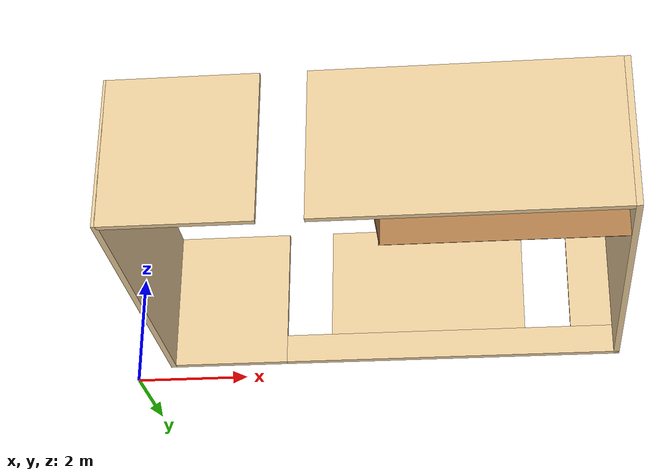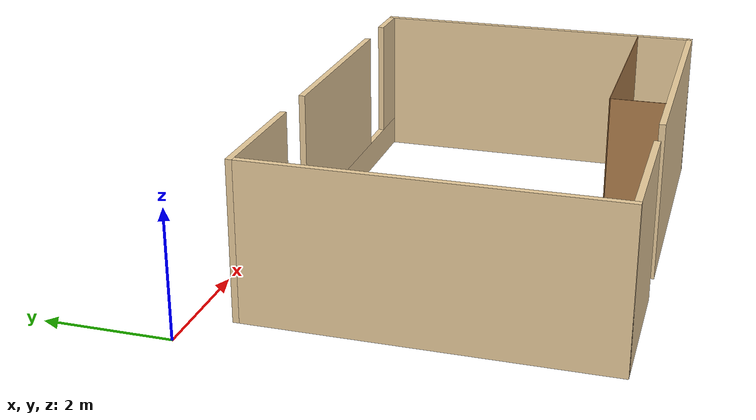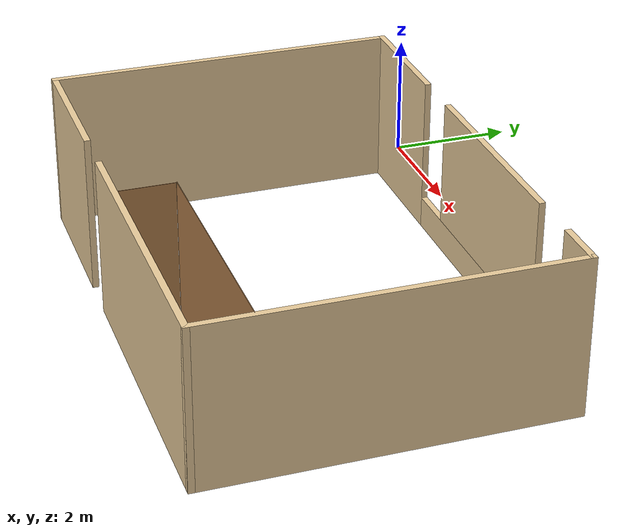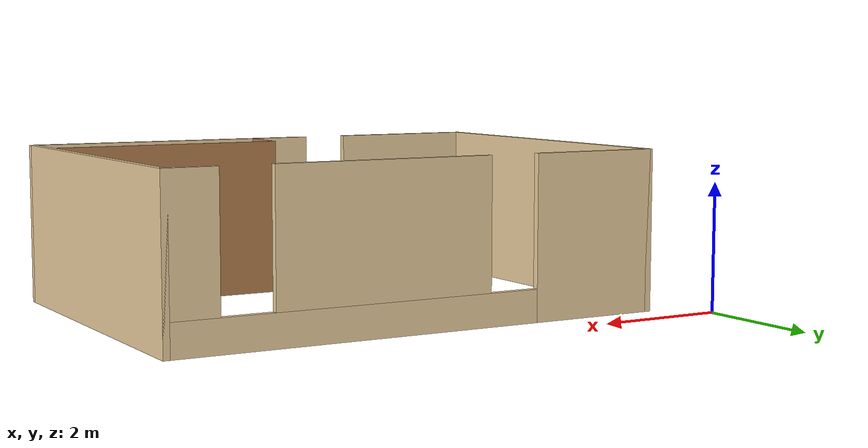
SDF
<?xml version='1.0'?>
<sdf version='1.6'>
  <model name='Room'>
    <pose frame=''>4.705 -3.415 0 0 -0 0</pose>
    <link name='Wall_20'>
      <pose frame=''>-0 2.765 0 0 -0 0</pose>
      <visual name='Wall_20_Visual_0'>
        <pose frame=''>-2.925 0 1.25 0 -0 0</pose>
        <geometry>
          <box>
            <size>2.1 0.1 2.5</size>
          </box>
        </geometry>
        <material>
          <script>
            <uri>file://media/materials/scripts/gazebo.material</uri>
            <name>Gazebo/Grey</name>
          </script>
          <ambient>0.921569 0.807843 0.615686 1</ambient>
        </material>
        <meta>
          <layer>0</layer>
        </meta>
      </visual>
      <collision name='Wall_20_Collision_0'>
        <geometry>
          <box>
            <size>2.1 0.1 2.5</size>
          </box>
        </geometry>
        <pose frame=''>-2.925 0 1.25 0 -0 0</pose>
      </collision>
      <visual name='Wall_20_Visual_1'>
        <pose frame=''>1.05 0 0.25 0 -0 0</pose>
        <geometry>
          <box>
            <size>5.85 0.1 0.5</size>
          </box>
        </geometry>
        <material>
          <script>
            <uri>file://media/materials/scripts/gazebo.material</uri>
            <name>Gazebo/Grey</name>
          </script>
          <ambient>0.921569 0.807843 0.615686 1</ambient>
        </material>
        <meta>
          <layer>0</layer>
        </meta>
      </visual>
      <collision name='Wall_20_Collision_1'>
        <geometry>
          <box>
            <size>5.85 0.1 0.5</size>
          </box>
        </geometry>
        <pose frame=''>1.05 0 0.25 0 -0 0</pose>
      </collision>
      <visual name='Wall_20_Visual_2'>
        <pose frame=''>0.64 0 1.5 0 -0 0</pose>
        <geometry>
          <box>
            <size>3.43 0.1 2</size>
          </box>
        </geometry>
        <material>
          <script>
            <uri>file://media/materials/scripts/gazebo.material</uri>
            <name>Gazebo/Grey</name>
          </script>
          <ambient>0.921569 0.807843 0.615686 1</ambient>
        </material>
        <meta>
          <layer>0</layer>
        </meta>
      </visual>
      <collision name='Wall_20_Collision_2'>
        <geometry>
          <box>
            <size>3.43 0.1 2</size>
          </box>
        </geometry>
        <pose frame=''>0.64 0 1.5 0 -0 0</pose>
      </collision>
      <visual name='Wall_20_Visual_3'>
        <pose frame=''>3.565 0 1.5 0 -0 0</pose>
        <geometry>
          <box>
            <size>0.82 0.1 2</size>
          </box>
        </geometry>
        <material>
          <script>
            <uri>file://media/materials/scripts/gazebo.material</uri>
            <name>Gazebo/Grey</name>
          </script>
          <ambient>0.921569 0.807843 0.615686 1</ambient>
        </material>
        <meta>
          <layer>0</layer>
        </meta>
      </visual>
      <collision name='Wall_20_Collision_3'>
        <geometry>
          <box>
            <size>0.82 0.1 2</size>
          </box>
        </geometry>
        <pose frame=''>3.565 0 1.5 0 -0 0</pose>
      </collision>
    </link>
    <link name='Wall_21'>
      <collision name='Wall_21_Collision'>
        <geometry>
          <box>
            <size>5.63 0.1 2.5</size>
          </box>
        </geometry>
        <pose frame=''>0 0 1.25 0 -0 0</pose>
      </collision>
      <visual name='Wall_21_Visual'>
        <pose frame=''>0 0 1.25 0 -0 0</pose>
        <geometry>
          <box>
            <size>5.63 0.1 2.5</size>
          </box>
        </geometry>
        <material>
          <script>
            <uri>file://media/materials/scripts/gazebo.material</uri>
            <name>Gazebo/Grey</name>
          </script>
          <ambient>0.921569 0.807843 0.615686 1</ambient>
        </material>
        <meta>
          <layer>0</layer>
        </meta>
      </visual>
      <pose frame=''>3.925 0 0 0 -0 -1.5708</pose>
    </link>
    <link name='Wall_23'>
      <collision name='Wall_23_Collision'>
        <geometry>
          <box>
            <size>5.63 0.1 2.5</size>
          </box>
        </geometry>
        <pose frame=''>0 0 1.25 0 -0 0</pose>
      </collision>
      <visual name='Wall_23_Visual'>
        <pose frame=''>0 0 1.25 0 -0 0</pose>
        <geometry>
          <box>
            <size>5.63 0.1 2.5</size>
          </box>
        </geometry>
        <material>
          <script>
            <uri>file://media/materials/scripts/gazebo.material</uri>
            <name>Gazebo/Grey</name>
          </script>
          <ambient>0.921569 0.807843 0.615686 1</ambient>
        </material>
        <meta>
          <layer>0</layer>
        </meta>
      </visual>
      <pose frame=''>-3.925 0 0 0 -0 -1.5708</pose>
    </link>
    <link name='Wall_25'>
      <pose frame=''>-0 -2.765 0 0 -0 0</pose>
      <visual name='Wall_25_Visual_0'>
        <pose frame=''>-2.77256 0 1.25 0 -0 0</pose>
        <geometry>
          <box>
            <size>2.40488 0.1 2.5</size>
          </box>
        </geometry>
        <material>
          <script>
            <uri>file://media/materials/scripts/gazebo.material</uri>
            <name>Gazebo/Grey</name>
          </script>
          <ambient>0.921569 0.807843 0.615686 1</ambient>
        </material>
        <meta>
          <layer>0</layer>
        </meta>
      </visual>
      <collision name='Wall_25_Collision_0'>
        <geometry>
          <box>
            <size>2.40488 0.1 2.5</size>
          </box>
        </geometry>
        <pose frame=''>-2.77256 0 1.25 0 -0 0</pose>
      </collision>
      <visual name='Wall_25_Visual_1'>
        <pose frame=''>1.56244 0 1.25 0 -0 0</pose>
        <geometry>
          <box>
            <size>4.82512 0.1 2.5</size>
          </box>
        </geometry>
        <material>
          <script>
            <uri>file://media/materials/scripts/gazebo.material</uri>
            <name>Gazebo/Grey</name>
          </script>
          <ambient>0.921569 0.807843 0.615686 1</ambient>
        </material>
        <meta>
          <layer>0</layer>
        </meta>
      </visual>
      <collision name='Wall_25_Collision_1'>
        <geometry>
          <box>
            <size>4.82512 0.1 2.5</size>
          </box>
        </geometry>
        <pose frame=''>1.56244 0 1.25 0 -0 0</pose>
      </collision>
    </link>
    <link name='Wall_45'>
      <collision name='Wall_45_Collision'>
        <geometry>
          <box>
            <size>3.76 0.01 2.5</size>
          </box>
        </geometry>
        <pose frame=''>0 0 1.25 0 -0 0</pose>
      </collision>
      <visual name='Wall_45_Visual'>
        <pose frame=''>0 0 1.25 0 -0 0</pose>
        <geometry>
          <box>
            <size>3.76 0.01 2.5</size>
          </box>
        </geometry>
        <material>
          <script>
            <uri>file://media/materials/scripts/gazebo.material</uri>
            <name>Gazebo/Wood</name>
          </script>
          <ambient>1 1 1 1</ambient>
        </material>
        <meta>
          <layer>0</layer>
        </meta>
      </visual>
      <pose frame=''>2.02 -1.857 0 0 -0 3.14159</pose>
    </link>
    <link name='Wall_48'>
      <collision name='Wall_48_Collision'>
        <geometry>
          <box>
            <size>0.87 0.01 2.5</size>
          </box>
        </geometry>
        <pose frame=''>0 0 1.25 0 -0 0</pose>
      </collision>
      <visual name='Wall_48_Visual'>
        <pose frame=''>0 0 1.25 0 -0 0</pose>
        <geometry>
          <box>
            <size>0.87 0.01 2.5</size>
          </box>
        </geometry>
        <material>
          <script>
            <uri>file://media/materials/scripts/gazebo.material</uri>
            <name>Gazebo/Wood</name>
          </script>
          <ambient>1 1 1 1</ambient>
        </material>
        <meta>
          <layer>0</layer>
        </meta>
      </visual>
      <pose frame=''>0.156 -2.305 0 0 -0 1.5708</pose>
    </link>
    <static>1</static>
  </model>
</sdf>
